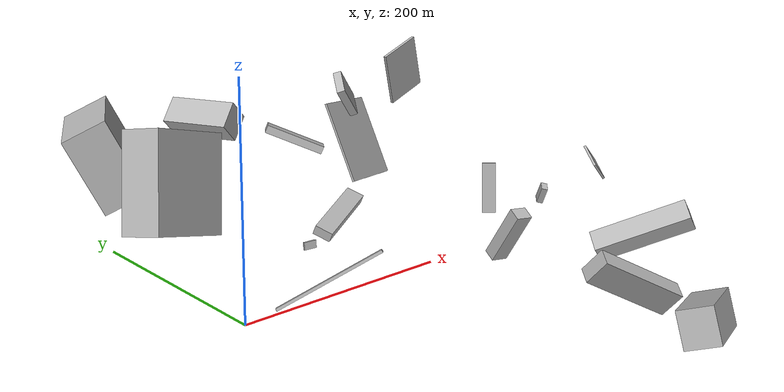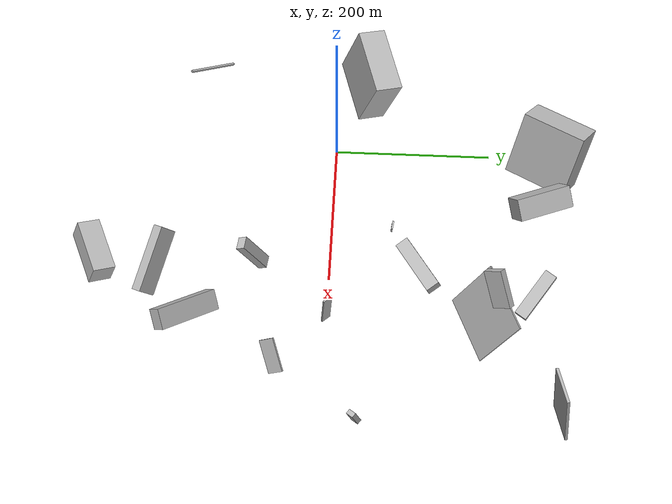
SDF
<sdf version="1.6">
 <world name="default">
  <scene>
   <sky><clouds><speed>12</speed></clouds></sky>
   <ambient>0.4 0.4 0.4 1</ambient>
   <background>0.7 0.7 0.7 1</background>
   <shadows>1</shadows>
  </scene>
  <gravity>0 0 -9.8066</gravity>
  <magnetic_field>6e-06 2.3e-05 -4.2e-05</magnetic_field>
  <physics default="0" name="default_physics" type="ode">
   <ode>
    <solver>
     <type>quick</type>
     <iters>10</iters>
     <sor>1.0</sor>
     <use_dynamic_moi_rescaling>0</use_dynamic_moi_rescaling>
    </solver>
    <constraints>
     <cfm>0</cfm>
     <erp>0.2</erp>
     <contact_max_correcting_vel>100</contact_max_correcting_vel>
     <contact_surface_layer>0.001</contact_surface_layer>
    </constraints>
   </ode>
   <max_step_size>0.004</max_step_size>
   <real_time_factor>1</real_time_factor>
   <real_time_update_rate>250</real_time_update_rate>
  </physics>
  <light name="sun" type="directional">
   <pose>0 0 10 0 0 0</pose>
   <diffuse>0.8 0.8 0.8 1</diffuse>
   <specular>0.2 0.2 0.2 1</specular>
   <attenuation>
    <range>1000</range>
    <constant>0.9</constant>
    <linear>0.01</linear>
    <quadratic>0.001</quadratic>
   </attenuation>
   <direction>-0.5 0.1 -0.9</direction>
  </light>
  <model name="building_1">
   <static>0</static>
   <pose>279.90881862083626 -165.93374824504502 50.393986067969934 0.7934412081532493 0.4093822826640685 2.3011424921078416</pose>
   <link name="link">
    <gravity>0</gravity>
    <pose>0 0 8.5 0 0 0</pose>
    <collision name="collision"><geometry><box><size>80 24 17</size></box></geometry></collision>
    <visual name="visual">
     <cast_shadows>0</cast_shadows>
     <geometry><box><size>80 24 17</size></box></geometry>
     <material>
      <script>
       <uri>model://HANNAS_wall/materials/scripts</uri>
       <uri>model://HANNAS_wall/materials/textures</uri>
       <name>vrc/HANNAS_wall</name>
      </script>
     </material>
    </visual>
   </link>
  </model>
  <model name="building_2">
   <static>0</static>
   <pose>195.0761106634604 -269.7312406201654 40.80490372329244 0.5287980018296017 -1.1983892747301677 1.509965955150137</pose>
   <link name="link">
    <gravity>0</gravity>
    <pose>0 0 13.5 0 0 0</pose>
    <collision name="collision"><geometry><box><size>29 66 27</size></box></geometry></collision>
    <visual name="visual">
     <cast_shadows>0</cast_shadows>
     <geometry><box><size>29 66 27</size></box></geometry>
     <material>
      <script>
       <uri>model://HANNAS_wall/materials/scripts</uri>
       <uri>model://HANNAS_wall/materials/textures</uri>
       <name>vrc/HANNAS_wall</name>
      </script>
     </material>
    </visual>
   </link>
  </model>
  <model name="building_3">
   <static>0</static>
   <pose>375.1594983441874 252.1477094883461 84.3558867431223 1.2802763768898324 -0.04967435128377519 1.7249991568496632</pose>
   <link name="link">
    <gravity>0</gravity>
    <pose>0 0 24.5 0 0 0</pose>
    <collision name="collision"><geometry><box><size>3 57 49</size></box></geometry></collision>
    <visual name="visual">
     <cast_shadows>0</cast_shadows>
     <geometry><box><size>3 57 49</size></box></geometry>
     <material>
      <script>
       <uri>model://HANNAS_wall/materials/scripts</uri>
       <uri>model://HANNAS_wall/materials/textures</uri>
       <name>vrc/HANNAS_wall</name>
      </script>
     </material>
    </visual>
   </link>
  </model>
  <model name="building_4">
   <static>0</static>
   <pose>124.82912819787073 75.83126419748078 15.749177108537026 3.0326281384877976 -0.019835862578350398 -0.13331348829247514</pose>
   <link name="link">
    <gravity>0</gravity>
    <pose>0 0 3.5 0 0 0</pose>
    <collision name="collision"><geometry><box><size>12 2 7</size></box></geometry></collision>
    <visual name="visual">
     <cast_shadows>0</cast_shadows>
     <geometry><box><size>12 2 7</size></box></geometry>
     <material>
      <script>
       <uri>model://HANNAS_wall/materials/scripts</uri>
       <uri>model://HANNAS_wall/materials/textures</uri>
       <name>vrc/HANNAS_wall</name>
      </script>
     </material>
    </visual>
   </link>
  </model>
  <model name="building_5">
   <static>0</static>
   <pose>142.37220980310585 251.79978425984393 78.33905543743339 -0.7844283840910616 0.03900454992371064 1.9767933350385665</pose>
   <link name="link">
    <gravity>0</gravity>
    <pose>0 0 13.0 0 0 0</pose>
    <collision name="collision"><geometry><box><size>68 27 26</size></box></geometry></collision>
    <visual name="visual">
     <cast_shadows>0</cast_shadows>
     <geometry><box><size>68 27 26</size></box></geometry>
     <material>
      <script>
       <uri>model://HANNAS_wall/materials/scripts</uri>
       <uri>model://HANNAS_wall/materials/textures</uri>
       <name>vrc/HANNAS_wall</name>
      </script>
     </material>
    </visual>
   </link>
  </model>
  <model name="building_6">
   <static>0</static>
   <pose>219.63438826611565 126.56330892539324 22.797904462820867 1.7102111157715185 0.3834358831675195 -1.019595576763754</pose>
   <link name="link">
    <gravity>0</gravity>
    <pose>0 0 40.0 0 0 0</pose>
    <collision name="collision"><geometry><box><size>17 9 80</size></box></geometry></collision>
    <visual name="visual">
     <cast_shadows>0</cast_shadows>
     <geometry><box><size>17 9 80</size></box></geometry>
     <material>
      <script>
       <uri>model://HANNAS_wall/materials/scripts</uri>
       <uri>model://HANNAS_wall/materials/textures</uri>
       <name>vrc/HANNAS_wall</name>
      </script>
     </material>
    </visual>
   </link>
  </model>
  <model name="building_7">
   <static>0</static>
   <pose>-47.89151266871161 -161.77344041564692 104.16552240162497 1.7529216696138512 0.536529370921953 2.45803411171604</pose>
   <link name="link">
    <gravity>0</gravity>
    <pose>0 0 1.5 0 0 0</pose>
    <collision name="collision"><geometry><box><size>80 2 3</size></box></geometry></collision>
    <visual name="visual">
     <cast_shadows>0</cast_shadows>
     <geometry><box><size>80 2 3</size></box></geometry>
     <material>
      <script>
       <uri>model://HANNAS_wall/materials/scripts</uri>
       <uri>model://HANNAS_wall/materials/textures</uri>
       <name>vrc/HANNAS_wall</name>
      </script>
     </material>
    </visual>
   </link>
  </model>
  <model name="building_8">
   <static>0</static>
   <pose>271.3650394997322 183.8946144229345 55.20213483144768 0.349351920026664 -1.0847435822943432 1.673657438851208</pose>
   <link name="link">
    <gravity>0</gravity>
    <pose>0 0 1.0 0 0 0</pose>
    <collision name="collision"><geometry><box><size>80 80 2</size></box></geometry></collision>
    <visual name="visual">
     <cast_shadows>0</cast_shadows>
     <geometry><box><size>80 80 2</size></box></geometry>
     <material>
      <script>
       <uri>model://HANNAS_wall/materials/scripts</uri>
       <uri>model://HANNAS_wall/materials/textures</uri>
       <name>vrc/HANNAS_wall</name>
      </script>
     </material>
    </visual>
   </link>
  </model>
  <model name="building_9">
   <static>0</static>
   <pose>15.962296267018257 234.33449986155267 65.43422941519508 1.5224950981711318 -1.116267281972235 2.6453238596438644</pose>
   <link name="link">
    <gravity>0</gravity>
    <pose>0 0 40.0 0 0 0</pose>
    <collision name="collision"><geometry><box><size>80 44 80</size></box></geometry></collision>
    <visual name="visual">
     <cast_shadows>0</cast_shadows>
     <geometry><box><size>80 44 80</size></box></geometry>
     <material>
      <script>
       <uri>model://HANNAS_wall/materials/scripts</uri>
       <uri>model://HANNAS_wall/materials/textures</uri>
       <name>vrc/HANNAS_wall</name>
      </script>
     </material>
    </visual>
   </link>
  </model>
  <model name="building_10">
   <static>0</static>
   <pose>192.39783927649725 -89.09450555925531 53.53112174175013 1.7937004524404085 1.053968735276465 1.643279923094241</pose>
   <link name="link">
    <gravity>0</gravity>
    <pose>0 0 7.5 0 0 0</pose>
    <collision name="collision"><geometry><box><size>49 11 15</size></box></geometry></collision>
    <visual name="visual">
     <cast_shadows>0</cast_shadows>
     <geometry><box><size>49 11 15</size></box></geometry>
     <material>
      <script>
       <uri>model://HANNAS_wall/materials/scripts</uri>
       <uri>model://HANNAS_wall/materials/textures</uri>
       <name>vrc/HANNAS_wall</name>
      </script>
     </material>
    </visual>
   </link>
  </model>
  <model name="building_11">
   <static>0</static>
   <pose>207.75632225558377 -213.05847708345323 42.56508432206468 -0.8727429430408228 -0.8930670561297276 -1.1393976985219043</pose>
   <link name="link">
    <gravity>0</gravity>
    <pose>0 0 7.0 0 0 0</pose>
    <collision name="collision"><geometry><box><size>23 80 14</size></box></geometry></collision>
    <visual name="visual">
     <cast_shadows>0</cast_shadows>
     <geometry><box><size>23 80 14</size></box></geometry>
     <material>
      <script>
       <uri>model://HANNAS_wall/materials/scripts</uri>
       <uri>model://HANNAS_wall/materials/textures</uri>
       <name>vrc/HANNAS_wall</name>
      </script>
     </material>
    </visual>
   </link>
  </model>
  <model name="building_12">
   <static>0</static>
   <pose>-43.20034660823085 30.81960803453154 76.3868250193094 0.18284007743783515 -0.30142712874726785 -2.8139413518499397</pose>
   <link name="link">
    <gravity>0</gravity>
    <pose>0 0 40.0 0 0 0</pose>
    <collision name="collision"><geometry><box><size>80 34 80</size></box></geometry></collision>
    <visual name="visual">
     <cast_shadows>0</cast_shadows>
     <geometry><box><size>80 34 80</size></box></geometry>
     <material>
      <script>
       <uri>model://HANNAS_wall/materials/scripts</uri>
       <uri>model://HANNAS_wall/materials/textures</uri>
       <name>vrc/HANNAS_wall</name>
      </script>
     </material>
    </visual>
   </link>
  </model>
  <model name="building_13">
   <static>0</static>
   <pose>272.751867968438 2.256885334734101 51.90533440889098 -1.517136933220542 0.03222180012850609 2.3340472494708244</pose>
   <link name="link">
    <gravity>0</gravity>
    <pose>0 0 1.0 0 0 0</pose>
    <collision name="collision"><geometry><box><size>12 46 2</size></box></geometry></collision>
    <visual name="visual">
     <cast_shadows>0</cast_shadows>
     <geometry><box><size>12 46 2</size></box></geometry>
     <material>
      <script>
       <uri>model://HANNAS_wall/materials/scripts</uri>
       <uri>model://HANNAS_wall/materials/textures</uri>
       <name>vrc/HANNAS_wall</name>
      </script>
     </material>
    </visual>
   </link>
  </model>
  <model name="building_14">
   <static>0</static>
   <pose>267.9171953198336 190.70909228170208 101.96052686786277 2.0063222351398204 0.6651376888579603 -2.056433421760001</pose>
   <link name="link">
    <gravity>0</gravity>
    <pose>0 0 4.0 0 0 0</pose>
    <collision name="collision"><geometry><box><size>24 44 8</size></box></geometry></collision>
    <visual name="visual">
     <cast_shadows>0</cast_shadows>
     <geometry><box><size>24 44 8</size></box></geometry>
     <material>
      <script>
       <uri>model://HANNAS_wall/materials/scripts</uri>
       <uri>model://HANNAS_wall/materials/textures</uri>
       <name>vrc/HANNAS_wall</name>
      </script>
     </material>
    </visual>
   </link>
  </model>
  <model name="building_15">
   <static>0</static>
   <pose>388.91397116240313 41.47539798556293 12.692249279446866 1.88415395797914 0.22915672774498097 -0.6653661432654682</pose>
   <link name="link">
    <gravity>0</gravity>
    <pose>0 0 5.0 0 0 0</pose>
    <collision name="collision"><geometry><box><size>6 17 10</size></box></geometry></collision>
    <visual name="visual">
     <cast_shadows>0</cast_shadows>
     <geometry><box><size>6 17 10</size></box></geometry>
     <material>
      <script>
       <uri>model://HANNAS_wall/materials/scripts</uri>
       <uri>model://HANNAS_wall/materials/textures</uri>
       <name>vrc/HANNAS_wall</name>
      </script>
     </material>
    </visual>
   </link>
  </model>
  <model name="building_16">
   <static>0</static>
   <pose>345.8437789981557 -62.765784325157654 67.34040377458885 -0.7305351423745716 -0.537791936691142 -0.7479392422258138</pose>
   <link name="link">
    <gravity>0</gravity>
    <pose>0 0 10.5 0 0 0</pose>
    <collision name="collision"><geometry><box><size>2 38 21</size></box></geometry></collision>
    <visual name="visual">
     <cast_shadows>0</cast_shadows>
     <geometry><box><size>2 38 21</size></box></geometry>
     <material>
      <script>
       <uri>model://HANNAS_wall/materials/scripts</uri>
       <uri>model://HANNAS_wall/materials/textures</uri>
       <name>vrc/HANNAS_wall</name>
      </script>
     </material>
    </visual>
   </link>
  </model>
  <model name="building_17">
   <static>0</static>
   <pose>217.12897554560627 260.3412267072513 59.95552618743423 -2.938488946196545 1.1657439544278154 2.696686717534239</pose>
   <link name="link">
    <gravity>0</gravity>
    <pose>0 0 30.5 0 0 0</pose>
    <collision name="collision"><geometry><box><size>8 15 61</size></box></geometry></collision>
    <visual name="visual">
     <cast_shadows>0</cast_shadows>
     <geometry><box><size>8 15 61</size></box></geometry>
     <material>
      <script>
       <uri>model://HANNAS_wall/materials/scripts</uri>
       <uri>model://HANNAS_wall/materials/textures</uri>
       <name>vrc/HANNAS_wall</name>
      </script>
     </material>
    </visual>
   </link>
  </model>
 </world>
</sdf>
